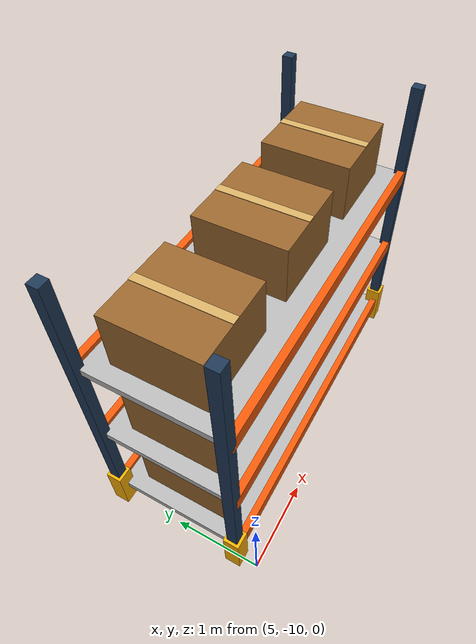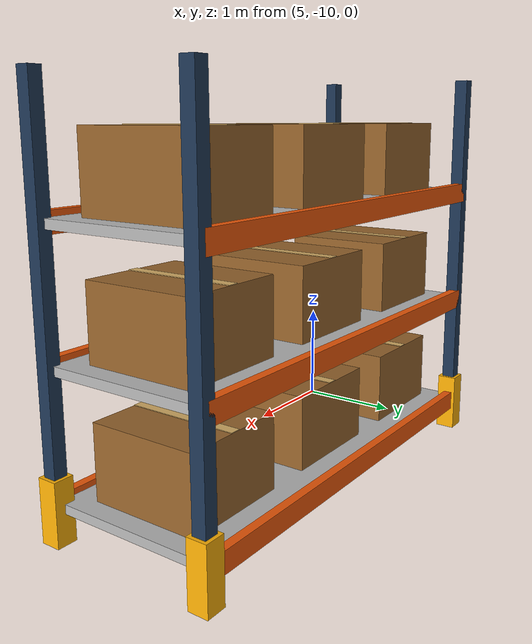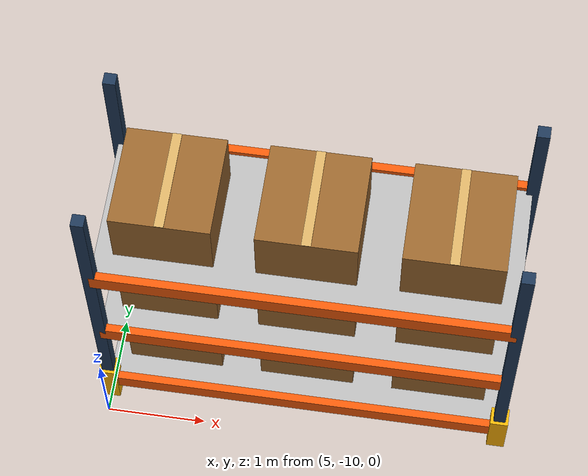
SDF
<sdf version="1.9">
 <world name="factory">
  <model name="rack_1_0_0">
   <static>true</static>
   <pose>7 -9 0 0 0 0</pose>
   <link name="body">
    <visual name="post0_visual">
     <pose>-2 -0.75 1.8 0 0 0</pose>
     <geometry><box><size>0.12 0.12 3.6</size></box></geometry>
     <material><ambient>.12 .22 .34 1</ambient><diffuse>.12 .22 .34 1</diffuse></material>
    </visual>
    <collision name="post0_collision">
     <pose>-2 -0.75 1.8 0 0 0</pose>
     <geometry><box><size>0.12 0.12 3.6</size></box></geometry>
    </collision>
    <visual name="guard0_visual">
     <pose>-2 -0.75 0.275 0 0 0</pose>
     <geometry><box><size>0.18 0.18 0.55</size></box></geometry>
     <material><ambient>1 .7 .02 1</ambient><diffuse>1 .7 .02 1</diffuse></material>
    </visual>
    <collision name="guard0_collision">
     <pose>-2 -0.75 0.275 0 0 0</pose>
     <geometry><box><size>0.18 0.18 0.55</size></box></geometry>
    </collision>
    <visual name="post1_visual">
     <pose>2 -0.75 1.8 0 0 0</pose>
     <geometry><box><size>0.12 0.12 3.6</size></box></geometry>
     <material><ambient>.12 .22 .34 1</ambient><diffuse>.12 .22 .34 1</diffuse></material>
    </visual>
    <collision name="post1_collision">
     <pose>2 -0.75 1.8 0 0 0</pose>
     <geometry><box><size>0.12 0.12 3.6</size></box></geometry>
    </collision>
    <visual name="guard1_visual">
     <pose>2 -0.75 0.275 0 0 0</pose>
     <geometry><box><size>0.18 0.18 0.55</size></box></geometry>
     <material><ambient>1 .7 .02 1</ambient><diffuse>1 .7 .02 1</diffuse></material>
    </visual>
    <collision name="guard1_collision">
     <pose>2 -0.75 0.275 0 0 0</pose>
     <geometry><box><size>0.18 0.18 0.55</size></box></geometry>
    </collision>
    <visual name="post2_visual">
     <pose>-2 0.75 1.8 0 0 0</pose>
     <geometry><box><size>0.12 0.12 3.6</size></box></geometry>
     <material><ambient>.12 .22 .34 1</ambient><diffuse>.12 .22 .34 1</diffuse></material>
    </visual>
    <collision name="post2_collision">
     <pose>-2 0.75 1.8 0 0 0</pose>
     <geometry><box><size>0.12 0.12 3.6</size></box></geometry>
    </collision>
    <visual name="guard2_visual">
     <pose>-2 0.75 0.275 0 0 0</pose>
     <geometry><box><size>0.18 0.18 0.55</size></box></geometry>
     <material><ambient>1 .7 .02 1</ambient><diffuse>1 .7 .02 1</diffuse></material>
    </visual>
    <collision name="guard2_collision">
     <pose>-2 0.75 0.275 0 0 0</pose>
     <geometry><box><size>0.18 0.18 0.55</size></box></geometry>
    </collision>
    <visual name="post3_visual">
     <pose>2 0.75 1.8 0 0 0</pose>
     <geometry><box><size>0.12 0.12 3.6</size></box></geometry>
     <material><ambient>.12 .22 .34 1</ambient><diffuse>.12 .22 .34 1</diffuse></material>
    </visual>
    <collision name="post3_collision">
     <pose>2 0.75 1.8 0 0 0</pose>
     <geometry><box><size>0.12 0.12 3.6</size></box></geometry>
    </collision>
    <visual name="guard3_visual">
     <pose>2 0.75 0.275 0 0 0</pose>
     <geometry><box><size>0.18 0.18 0.55</size></box></geometry>
     <material><ambient>1 .7 .02 1</ambient><diffuse>1 .7 .02 1</diffuse></material>
    </visual>
    <collision name="guard3_collision">
     <pose>2 0.75 0.275 0 0 0</pose>
     <geometry><box><size>0.18 0.18 0.55</size></box></geometry>
    </collision>
    <visual name="shelf0_visual">
     <pose>0 0 0.3 0 0 0</pose>
     <geometry><mesh><uri>model://factory_scene_assets/meshes/wood_010.dae</uri></mesh></geometry>
    </visual>
    <collision name="shelf0_collision">
     <pose>0 0 0.3 0 0 0</pose>
     <geometry><box><size>4 1.5 0.08</size></box></geometry>
    </collision>
    <visual name="beam0_0_visual">
     <pose>0 -0.77 0.3 0 0 0</pose>
     <geometry><box><size>4 0.08 0.18</size></box></geometry>
     <material><ambient>.95 .35 .035 1</ambient><diffuse>.95 .35 .035 1</diffuse></material>
    </visual>
    <collision name="beam0_0_collision">
     <pose>0 -0.77 0.3 0 0 0</pose>
     <geometry><box><size>4 0.08 0.18</size></box></geometry>
    </collision>
    <visual name="beam0_1_visual">
     <pose>0 0.77 0.3 0 0 0</pose>
     <geometry><box><size>4 0.08 0.18</size></box></geometry>
     <material><ambient>.95 .35 .035 1</ambient><diffuse>.95 .35 .035 1</diffuse></material>
    </visual>
    <collision name="beam0_1_collision">
     <pose>0 0.77 0.3 0 0 0</pose>
     <geometry><box><size>4 0.08 0.18</size></box></geometry>
    </collision>
    <visual name="cargo0_0_visual">
     <pose>-1.35 0 0.665 0 0 0</pose>
     <geometry><box><size>0.95 1 0.65</size></box></geometry>
     <material><ambient>.60 .40 .18 1</ambient><diffuse>.60 .40 .18 1</diffuse></material>
    </visual>
    <collision name="cargo0_0_collision">
     <pose>-1.35 0 0.665 0 0 0</pose>
     <geometry><box><size>0.95 1 0.65</size></box></geometry>
    </collision>
    <visual name="cargo0_0_tape_visual">
     <pose>-1.35 0 0.993 0 0 0</pose>
     <geometry><box><size>0.09 1 0.006</size></box></geometry>
     <material><ambient>.85 .69 .4 1</ambient><diffuse>.85 .69 .4 1</diffuse></material>
    </visual>
    <visual name="cargo0_1_visual">
     <pose>0 0 0.665 0 0 0</pose>
     <geometry><box><size>0.95 1 0.65</size></box></geometry>
     <material><ambient>.60 .40 .18 1</ambient><diffuse>.60 .40 .18 1</diffuse></material>
    </visual>
    <collision name="cargo0_1_collision">
     <pose>0 0 0.665 0 0 0</pose>
     <geometry><box><size>0.95 1 0.65</size></box></geometry>
    </collision>
    <visual name="cargo0_1_tape_visual">
     <pose>0 0 0.993 0 0 0</pose>
     <geometry><box><size>0.09 1 0.006</size></box></geometry>
     <material><ambient>.85 .69 .4 1</ambient><diffuse>.85 .69 .4 1</diffuse></material>
    </visual>
    <visual name="cargo0_2_visual">
     <pose>1.35 0 0.665 0 0 0</pose>
     <geometry><box><size>0.95 1 0.65</size></box></geometry>
     <material><ambient>.60 .40 .18 1</ambient><diffuse>.60 .40 .18 1</diffuse></material>
    </visual>
    <collision name="cargo0_2_collision">
     <pose>1.35 0 0.665 0 0 0</pose>
     <geometry><box><size>0.95 1 0.65</size></box></geometry>
    </collision>
    <visual name="cargo0_2_tape_visual">
     <pose>1.35 0 0.993 0 0 0</pose>
     <geometry><box><size>0.09 1 0.006</size></box></geometry>
     <material><ambient>.85 .69 .4 1</ambient><diffuse>.85 .69 .4 1</diffuse></material>
    </visual>
    <visual name="shelf1_visual">
     <pose>0 0 1.4 0 0 0</pose>
     <geometry><mesh><uri>model://factory_scene_assets/meshes/wood_010.dae</uri></mesh></geometry>
    </visual>
    <collision name="shelf1_collision">
     <pose>0 0 1.4 0 0 0</pose>
     <geometry><box><size>4 1.5 0.08</size></box></geometry>
    </collision>
    <visual name="beam1_0_visual">
     <pose>0 -0.77 1.4 0 0 0</pose>
     <geometry><box><size>4 0.08 0.18</size></box></geometry>
     <material><ambient>.95 .35 .035 1</ambient><diffuse>.95 .35 .035 1</diffuse></material>
    </visual>
    <collision name="beam1_0_collision">
     <pose>0 -0.77 1.4 0 0 0</pose>
     <geometry><box><size>4 0.08 0.18</size></box></geometry>
    </collision>
    <visual name="beam1_1_visual">
     <pose>0 0.77 1.4 0 0 0</pose>
     <geometry><box><size>4 0.08 0.18</size></box></geometry>
     <material><ambient>.95 .35 .035 1</ambient><diffuse>.95 .35 .035 1</diffuse></material>
    </visual>
    <collision name="beam1_1_collision">
     <pose>0 0.77 1.4 0 0 0</pose>
     <geometry><box><size>4 0.08 0.18</size></box></geometry>
    </collision>
    <visual name="cargo1_0_visual">
     <pose>-1.35 0 1.765 0 0 0</pose>
     <geometry><box><size>0.95 1 0.65</size></box></geometry>
     <material><ambient>.60 .40 .18 1</ambient><diffuse>.60 .40 .18 1</diffuse></material>
    </visual>
    <collision name="cargo1_0_collision">
     <pose>-1.35 0 1.765 0 0 0</pose>
     <geometry><box><size>0.95 1 0.65</size></box></geometry>
    </collision>
    <visual name="cargo1_0_tape_visual">
     <pose>-1.35 0 2.093 0 0 0</pose>
     <geometry><box><size>0.09 1 0.006</size></box></geometry>
     <material><ambient>.85 .69 .4 1</ambient><diffuse>.85 .69 .4 1</diffuse></material>
    </visual>
    <visual name="cargo1_1_visual">
     <pose>0 0 1.765 0 0 0</pose>
     <geometry><box><size>0.95 1 0.65</size></box></geometry>
     <material><ambient>.60 .40 .18 1</ambient><diffuse>.60 .40 .18 1</diffuse></material>
    </visual>
    <collision name="cargo1_1_collision">
     <pose>0 0 1.765 0 0 0</pose>
     <geometry><box><size>0.95 1 0.65</size></box></geometry>
    </collision>
    <visual name="cargo1_1_tape_visual">
     <pose>0 0 2.093 0 0 0</pose>
     <geometry><box><size>0.09 1 0.006</size></box></geometry>
     <material><ambient>.85 .69 .4 1</ambient><diffuse>.85 .69 .4 1</diffuse></material>
    </visual>
    <visual name="cargo1_2_visual">
     <pose>1.35 0 1.765 0 0 0</pose>
     <geometry><box><size>0.95 1 0.65</size></box></geometry>
     <material><ambient>.60 .40 .18 1</ambient><diffuse>.60 .40 .18 1</diffuse></material>
    </visual>
    <collision name="cargo1_2_collision">
     <pose>1.35 0 1.765 0 0 0</pose>
     <geometry><box><size>0.95 1 0.65</size></box></geometry>
    </collision>
    <visual name="cargo1_2_tape_visual">
     <pose>1.35 0 2.093 0 0 0</pose>
     <geometry><box><size>0.09 1 0.006</size></box></geometry>
     <material><ambient>.85 .69 .4 1</ambient><diffuse>.85 .69 .4 1</diffuse></material>
    </visual>
    <visual name="shelf2_visual">
     <pose>0 0 2.5 0 0 0</pose>
     <geometry><mesh><uri>model://factory_scene_assets/meshes/wood_010.dae</uri></mesh></geometry>
    </visual>
    <collision name="shelf2_collision">
     <pose>0 0 2.5 0 0 0</pose>
     <geometry><box><size>4 1.5 0.08</size></box></geometry>
    </collision>
    <visual name="beam2_0_visual">
     <pose>0 -0.77 2.5 0 0 0</pose>
     <geometry><box><size>4 0.08 0.18</size></box></geometry>
     <material><ambient>.95 .35 .035 1</ambient><diffuse>.95 .35 .035 1</diffuse></material>
    </visual>
    <collision name="beam2_0_collision">
     <pose>0 -0.77 2.5 0 0 0</pose>
     <geometry><box><size>4 0.08 0.18</size></box></geometry>
    </collision>
    <visual name="beam2_1_visual">
     <pose>0 0.77 2.5 0 0 0</pose>
     <geometry><box><size>4 0.08 0.18</size></box></geometry>
     <material><ambient>.95 .35 .035 1</ambient><diffuse>.95 .35 .035 1</diffuse></material>
    </visual>
    <collision name="beam2_1_collision">
     <pose>0 0.77 2.5 0 0 0</pose>
     <geometry><box><size>4 0.08 0.18</size></box></geometry>
    </collision>
    <visual name="cargo2_0_visual">
     <pose>-1.35 0 2.865 0 0 0</pose>
     <geometry><box><size>0.95 1 0.65</size></box></geometry>
     <material><ambient>.60 .40 .18 1</ambient><diffuse>.60 .40 .18 1</diffuse></material>
    </visual>
    <collision name="cargo2_0_collision">
     <pose>-1.35 0 2.865 0 0 0</pose>
     <geometry><box><size>0.95 1 0.65</size></box></geometry>
    </collision>
    <visual name="cargo2_0_tape_visual">
     <pose>-1.35 0 3.193 0 0 0</pose>
     <geometry><box><size>0.09 1 0.006</size></box></geometry>
     <material><ambient>.85 .69 .4 1</ambient><diffuse>.85 .69 .4 1</diffuse></material>
    </visual>
    <visual name="cargo2_1_visual">
     <pose>0 0 2.865 0 0 0</pose>
     <geometry><box><size>0.95 1 0.65</size></box></geometry>
     <material><ambient>.60 .40 .18 1</ambient><diffuse>.60 .40 .18 1</diffuse></material>
    </visual>
    <collision name="cargo2_1_collision">
     <pose>0 0 2.865 0 0 0</pose>
     <geometry><box><size>0.95 1 0.65</size></box></geometry>
    </collision>
    <visual name="cargo2_1_tape_visual">
     <pose>0 0 3.193 0 0 0</pose>
     <geometry><box><size>0.09 1 0.006</size></box></geometry>
     <material><ambient>.85 .69 .4 1</ambient><diffuse>.85 .69 .4 1</diffuse></material>
    </visual>
    <visual name="cargo2_2_visual">
     <pose>1.35 0 2.865 0 0 0</pose>
     <geometry><box><size>0.95 1 0.65</size></box></geometry>
     <material><ambient>.60 .40 .18 1</ambient><diffuse>.60 .40 .18 1</diffuse></material>
    </visual>
    <collision name="cargo2_2_collision">
     <pose>1.35 0 2.865 0 0 0</pose>
     <geometry><box><size>0.95 1 0.65</size></box></geometry>
    </collision>
    <visual name="cargo2_2_tape_visual">
     <pose>1.35 0 3.193 0 0 0</pose>
     <geometry><box><size>0.09 1 0.006</size></box></geometry>
     <material><ambient>.85 .69 .4 1</ambient><diffuse>.85 .69 .4 1</diffuse></material>
    </visual>
   </link>
  </model>
 </world>
</sdf>
